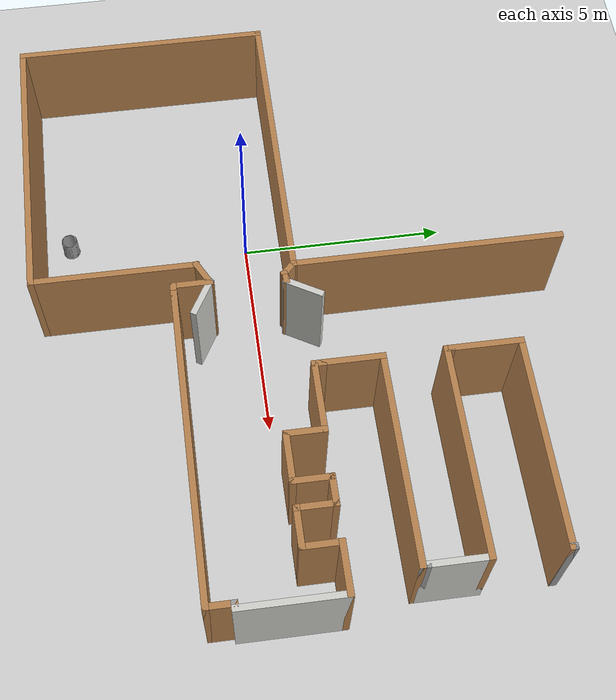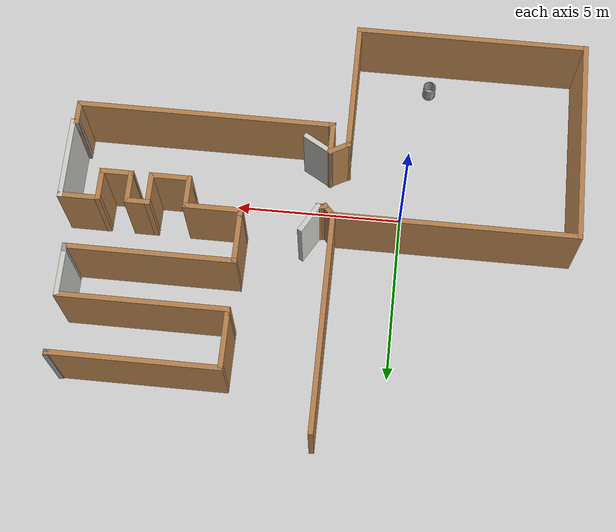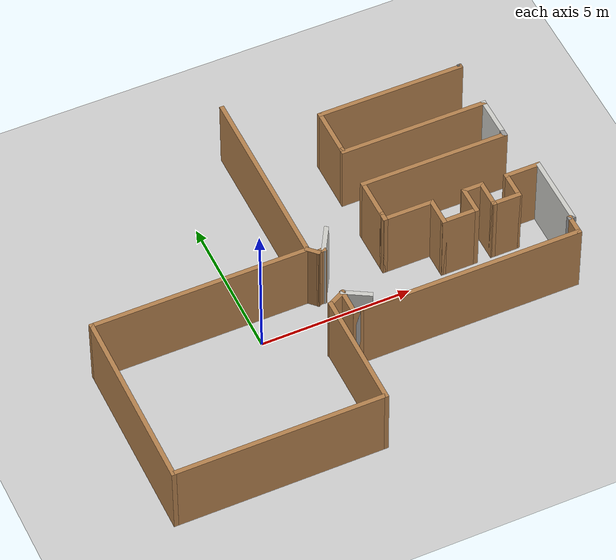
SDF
<sdf version="1.6">
 <world name="default">
  <model name="ground_plane">
   <static>1</static>
   <link name="link">
    <collision name="collision">
     <geometry><plane><normal>0 0 1</normal><size>100 100</size></plane></geometry>
     <surface>
      <contact><collide_bitmask>65535</collide_bitmask></contact>
      <friction><ode><mu>100</mu><mu2>50</mu2></ode></friction>
     </surface>
    </collision>
    <visual name="visual">
     <cast_shadows>0</cast_shadows>
     <geometry><plane><normal>0 0 1</normal><size>100 100</size></plane></geometry>
     <material>
      <script><uri>file://media/materials/scripts/gazebo.material</uri><name>Gazebo/Grey</name></script>
     </material>
    </visual>
   </link>
  </model>
  <model name="ecst_lab_v2">
   <pose>2.38151 7.60499 -4e-06 -3e-06 3e-06 -1.57079</pose>
   <link name="Wall_27">
    <collision name="Wall_27_Collision">
     <geometry><box><size>0.16 0.15 2.5</size></box></geometry>
     <pose>0 0 1.25 0 -0 0</pose>
    </collision>
    <visual name="Wall_27_Visual">
     <pose>0 0 1.25 0 -0 0</pose>
     <geometry><box><size>0.16 0.15 2.5</size></box></geometry>
     <material>
      <script><uri>file://media/materials/scripts/gazebo.material</uri><name>Gazebo/Grey</name></script>
      <ambient>1 1 1 1</ambient>
     </material>
     <meta><layer>0</layer></meta>
    </visual>
    <pose>1.81199 7.10227 0 0 -0 0</pose>
    <inertial>
     <inertia><ixx>1</ixx><ixy>0</ixy><ixz>0</ixz><iyy>1</iyy><iyz>0</iyz><izz>1</izz></inertia>
     <mass>1</mass>
    </inertial>
   </link>
   <link name="Wall_28">
    <collision name="Wall_28_Collision">
     <geometry><box><size>0.16 0.15 2.5</size></box></geometry>
     <pose>0 0 1.25 0 -0 0</pose>
    </collision>
    <visual name="Wall_28_Visual">
     <pose>0 0 1.25 0 -0 0</pose>
     <geometry><box><size>0.16 0.15 2.5</size></box></geometry>
     <material>
      <script><uri>file://media/materials/scripts/gazebo.material</uri><name>Gazebo/Grey</name></script>
      <ambient>1 1 1 1</ambient>
     </material>
     <meta><layer>0</layer></meta>
    </visual>
    <pose>1.82199 7.10227 0 0 -0 0</pose>
    <inertial>
     <inertia><ixx>1</ixx><ixy>0</ixy><ixz>0</ixz><iyy>1</iyy><iyz>0</iyz><izz>1</izz></inertia>
     <mass>1</mass>
    </inertial>
   </link>
   <link name="Wall_29">
    <collision name="Wall_29_Collision">
     <geometry><box><size>0.16 0.15 2.5</size></box></geometry>
     <pose>0 0 1.25 0 -0 0</pose>
    </collision>
    <visual name="Wall_29_Visual">
     <pose>0 0 1.25 0 -0 0</pose>
     <geometry><box><size>0.16 0.15 2.5</size></box></geometry>
     <material>
      <script><uri>file://media/materials/scripts/gazebo.material</uri><name>Gazebo/Grey</name></script>
      <ambient>1 1 1 1</ambient>
     </material>
     <meta><layer>0</layer></meta>
    </visual>
    <pose>1.82199 7.10227 0 0 -0 3.14159</pose>
    <inertial>
     <inertia><ixx>1</ixx><ixy>0</ixy><ixz>0</ixz><iyy>1</iyy><iyz>0</iyz><izz>1</izz></inertia>
     <mass>1</mass>
    </inertial>
   </link>
   <link name="Wall_30">
    <collision name="Wall_30_Collision">
     <geometry><box><size>0.16 0.15 2.5</size></box></geometry>
     <pose>0 0 1.25 0 -0 0</pose>
    </collision>
    <visual name="Wall_30_Visual">
     <pose>0 0 1.25 0 -0 0</pose>
     <geometry><box><size>0.16 0.15 2.5</size></box></geometry>
     <material>
      <script><uri>file://media/materials/scripts/gazebo.material</uri><name>Gazebo/Grey</name></script>
      <ambient>1 1 1 1</ambient>
     </material>
     <meta><layer>0</layer></meta>
    </visual>
    <pose>1.82199 7.10227 0 0 -0 0</pose>
    <inertial>
     <inertia><ixx>1</ixx><ixy>0</ixy><ixz>0</ixz><iyy>1</iyy><iyz>0</iyz><izz>1</izz></inertia>
     <mass>1</mass>
    </inertial>
   </link>
   <link name="Wall_31">
    <collision name="Wall_31_Collision">
     <geometry><box><size>0.16 0.15 2.5</size></box></geometry>
     <pose>0 0 1.25 0 -0 0</pose>
    </collision>
    <visual name="Wall_31_Visual">
     <pose>0 0 1.25 0 -0 0</pose>
     <geometry><box><size>0.16 0.15 2.5</size></box></geometry>
     <material>
      <script><uri>file://media/materials/scripts/gazebo.material</uri><name>Gazebo/Grey</name></script>
      <ambient>1 1 1 1</ambient>
     </material>
     <meta><layer>0</layer></meta>
    </visual>
    <pose>1.83199 7.10227 0 0 -0 0</pose>
    <inertial>
     <inertia><ixx>1</ixx><ixy>0</ixy><ixz>0</ixz><iyy>1</iyy><iyz>0</iyz><izz>1</izz></inertia>
     <mass>1</mass>
    </inertial>
   </link>
   <link name="Wall_32">
    <collision name="Wall_32_Collision">
     <geometry><box><size>0.16 0.15 2.5</size></box></geometry>
     <pose>0 0 1.25 0 -0 0</pose>
    </collision>
    <visual name="Wall_32_Visual">
     <pose>0 0 1.25 0 -0 0</pose>
     <geometry><box><size>0.16 0.15 2.5</size></box></geometry>
     <material>
      <script><uri>file://media/materials/scripts/gazebo.material</uri><name>Gazebo/Grey</name></script>
      <ambient>1 1 1 1</ambient>
     </material>
     <meta><layer>0</layer></meta>
    </visual>
    <pose>1.83199 7.10227 0 0 -0 3.14159</pose>
    <inertial>
     <inertia><ixx>1</ixx><ixy>0</ixy><ixz>0</ixz><iyy>1</iyy><iyz>0</iyz><izz>1</izz></inertia>
     <mass>1</mass>
    </inertial>
   </link>
   <link name="Wall_33">
    <collision name="Wall_33_Collision">
     <geometry><box><size>0.16 0.15 2.5</size></box></geometry>
     <pose>0 0 1.25 0 -0 0</pose>
    </collision>
    <visual name="Wall_33_Visual">
     <pose>0 0 1.25 0 -0 0</pose>
     <geometry><box><size>0.16 0.15 2.5</size></box></geometry>
     <material>
      <script><uri>file://media/materials/scripts/gazebo.material</uri><name>Gazebo/Grey</name></script>
      <ambient>1 1 1 1</ambient>
     </material>
     <meta><layer>0</layer></meta>
    </visual>
    <pose>1.83199 7.10227 0 0 -0 0</pose>
    <inertial>
     <inertia><ixx>1</ixx><ixy>0</ixy><ixz>0</ixz><iyy>1</iyy><iyz>0</iyz><izz>1</izz></inertia>
     <mass>1</mass>
    </inertial>
   </link>
   <link name="Wall_34">
    <collision name="Wall_34_Collision">
     <geometry><box><size>5 0.15 2.5</size></box></geometry>
     <pose>0 0 1.25 0 -0 0</pose>
    </collision>
    <visual name="Wall_34_Visual">
     <pose>0 0 1.25 0 -0 0</pose>
     <geometry><box><size>5 0.15 2.5</size></box></geometry>
     <material>
      <script><uri>file://media/materials/scripts/gazebo.material</uri><name>Gazebo/Wood</name></script>
      <ambient>1 1 1 1</ambient>
     </material>
     <meta><layer>0</layer></meta>
    </visual>
    <pose>1.83699 4.67727 0 0 -0 -1.5708</pose>
    <inertial>
     <inertia><ixx>1</ixx><ixy>0</ixy><ixz>0</ixz><iyy>1</iyy><iyz>0</iyz><izz>1</izz></inertia>
     <mass>1</mass>
    </inertial>
   </link>
   <link name="Wall_35">
    <collision name="Wall_35_Collision">
     <geometry><box><size>1.75 0.15 2.5</size></box></geometry>
     <pose>0 0 1.25 0 -0 0</pose>
    </collision>
    <visual name="Wall_35_Visual">
     <pose>0 0 1.25 0 -0 0</pose>
     <geometry><box><size>1.75 0.15 2.5</size></box></geometry>
     <material>
      <script><uri>file://media/materials/scripts/gazebo.material</uri><name>Gazebo/Wood</name></script>
      <ambient>1 1 1 1</ambient>
     </material>
     <meta><layer>0</layer></meta>
    </visual>
    <pose>2.63699 2.25228 0 0 -0 0</pose>
    <inertial>
     <inertia><ixx>1</ixx><ixy>0</ixy><ixz>0</ixz><iyy>1</iyy><iyz>0</iyz><izz>1</izz></inertia>
     <mass>1</mass>
    </inertial>
   </link>
   <link name="Wall_36">
    <collision name="Wall_36_Collision">
     <geometry><box><size>0.25 0.15 2.5</size></box></geometry>
     <pose>0 0 1.25 0 -0 0</pose>
    </collision>
    <visual name="Wall_36_Visual">
     <pose>0 0 1.25 0 -0 0</pose>
     <geometry><box><size>0.25 0.15 2.5</size></box></geometry>
     <material>
      <script><uri>file://media/materials/scripts/gazebo.material</uri><name>Gazebo/Wood</name></script>
      <ambient>1 1 1 1</ambient>
     </material>
     <meta><layer>0</layer></meta>
    </visual>
    <pose>3.48699 2.25228 0 0 -0 0</pose>
    <inertial>
     <inertia><ixx>1</ixx><ixy>0</ixy><ixz>0</ixz><iyy>1</iyy><iyz>0</iyz><izz>1</izz></inertia>
     <mass>1</mass>
    </inertial>
   </link>
   <link name="Wall_37">
    <collision name="Wall_37_Collision">
     <geometry><box><size>5 0.15 2.5</size></box></geometry>
     <pose>0 0 1.25 0 -0 0</pose>
    </collision>
    <visual name="Wall_37_Visual">
     <pose>0 0 1.25 0 -0 0</pose>
     <geometry><box><size>5 0.15 2.5</size></box></geometry>
     <material>
      <script><uri>file://media/materials/scripts/gazebo.material</uri><name>Gazebo/Wood</name></script>
      <ambient>1 1 1 1</ambient>
     </material>
     <meta><layer>0</layer></meta>
    </visual>
    <pose>3.53699 4.67727 0 0 -0 1.5708</pose>
    <inertial>
     <inertia><ixx>1</ixx><ixy>0</ixy><ixz>0</ixz><iyy>1</iyy><iyz>0</iyz><izz>1</izz></inertia>
     <mass>1</mass>
    </inertial>
   </link>
   <link name="Wall_38">
    <collision name="Wall_38_Collision">
     <geometry><box><size>1.5 0.15 2.5</size></box></geometry>
     <pose>0 0 1.25 0 -0 0</pose>
    </collision>
    <visual name="Wall_38_Visual">
     <pose>0 0 1.25 0 -0 0</pose>
     <geometry><box><size>1.5 0.15 2.5</size></box></geometry>
     <material>
      <script><uri>file://media/materials/scripts/gazebo.material</uri><name>Gazebo/CeilingTiled</name></script>
      <ambient>1 1 1 1</ambient>
     </material>
     <meta><layer>0</layer></meta>
    </visual>
    <pose>4.21199 7.10227 0 0 -0 0</pose>
    <inertial>
     <inertia><ixx>1</ixx><ixy>0</ixy><ixz>0</ixz><iyy>1</iyy><iyz>0</iyz><izz>1</izz></inertia>
     <mass>1</mass>
    </inertial>
   </link>
   <link name="Wall_39">
    <collision name="Wall_39_Collision">
     <geometry><box><size>0.25 0.15 2.5</size></box></geometry>
     <pose>0 0 1.25 0 -0 0</pose>
    </collision>
    <visual name="Wall_39_Visual">
     <pose>0 0 1.25 0 -0 0</pose>
     <geometry><box><size>0.25 0.15 2.5</size></box></geometry>
     <material>
      <script><uri>file://media/materials/scripts/gazebo.material</uri><name>Gazebo/Grey</name></script>
      <ambient>1 1 1 1</ambient>
     </material>
     <meta><layer>0</layer></meta>
    </visual>
    <pose>4.93699 7.10227 0 0 -0 0</pose>
    <inertial>
     <inertia><ixx>1</ixx><ixy>0</ixy><ixz>0</ixz><iyy>1</iyy><iyz>0</iyz><izz>1</izz></inertia>
     <mass>1</mass>
    </inertial>
   </link>
   <link name="Wall_40">
    <collision name="Wall_40_Collision">
     <geometry><box><size>5 0.15 2.5</size></box></geometry>
     <pose>0 0 1.25 0 -0 0</pose>
    </collision>
    <visual name="Wall_40_Visual">
     <pose>0 0 1.25 0 -0 0</pose>
     <geometry><box><size>5 0.15 2.5</size></box></geometry>
     <material>
      <script><uri>file://media/materials/scripts/gazebo.material</uri><name>Gazebo/Wood</name></script>
      <ambient>1 1 1 1</ambient>
     </material>
     <meta><layer>0</layer></meta>
    </visual>
    <pose>4.98699 4.67727 0 0 -0 -1.5708</pose>
    <inertial>
     <inertia><ixx>1</ixx><ixy>0</ixy><ixz>0</ixz><iyy>1</iyy><iyz>0</iyz><izz>1</izz></inertia>
     <mass>1</mass>
    </inertial>
   </link>
   <link name="Wall_41">
    <collision name="Wall_41_Collision">
     <geometry><box><size>1.5 0.15 2.5</size></box></geometry>
     <pose>0 0 1.25 0 -0 0</pose>
    </collision>
    <visual name="Wall_41_Visual">
     <pose>0 0 1.25 0 -0 0</pose>
     <geometry><box><size>1.5 0.15 2.5</size></box></geometry>
     <material>
      <script><uri>file://media/materials/scripts/gazebo.material</uri><name>Gazebo/Wood</name></script>
      <ambient>1 1 1 1</ambient>
     </material>
     <meta><layer>0</layer></meta>
    </visual>
    <pose>5.66199 2.25228 0 0 -0 0</pose>
    <inertial>
     <inertia><ixx>1</ixx><ixy>0</ixy><ixz>0</ixz><iyy>1</iyy><iyz>0</iyz><izz>1</izz></inertia>
     <mass>1</mass>
    </inertial>
   </link>
   <link name="Wall_42">
    <collision name="Wall_42_Collision">
     <geometry><box><size>0.25 0.15 2.5</size></box></geometry>
     <pose>0 0 1.25 0 -0 0</pose>
    </collision>
    <visual name="Wall_42_Visual">
     <pose>0 0 1.25 0 -0 0</pose>
     <geometry><box><size>0.25 0.15 2.5</size></box></geometry>
     <material>
      <script><uri>file://media/materials/scripts/gazebo.material</uri><name>Gazebo/Wood</name></script>
      <ambient>1 1 1 1</ambient>
     </material>
     <meta><layer>0</layer></meta>
    </visual>
    <pose>6.38699 2.25228 0 0 -0 0</pose>
    <inertial>
     <inertia><ixx>1</ixx><ixy>0</ixy><ixz>0</ixz><iyy>1</iyy><iyz>0</iyz><izz>1</izz></inertia>
     <mass>1</mass>
    </inertial>
   </link>
   <link name="Wall_43">
    <collision name="Wall_43_Collision">
     <geometry><box><size>0.25 0.15 2.5</size></box></geometry>
     <pose>0 0 1.25 0 -0 0</pose>
    </collision>
    <visual name="Wall_43_Visual">
     <pose>0 0 1.25 0 -0 0</pose>
     <geometry><box><size>0.25 0.15 2.5</size></box></geometry>
     <material>
      <script><uri>file://media/materials/scripts/gazebo.material</uri><name>Gazebo/Wood</name></script>
      <ambient>1 1 1 1</ambient>
     </material>
     <meta><layer>0</layer></meta>
    </visual>
    <pose>6.48699 2.25228 0 0 -0 0</pose>
    <inertial>
     <inertia><ixx>1</ixx><ixy>0</ixy><ixz>0</ixz><iyy>1</iyy><iyz>0</iyz><izz>1</izz></inertia>
     <mass>1</mass>
    </inertial>
   </link>
   <link name="Wall_44">
    <collision name="Wall_44_Collision">
     <geometry><box><size>1.75 0.15 2.5</size></box></geometry>
     <pose>0 0 1.25 0 -0 0</pose>
    </collision>
    <visual name="Wall_44_Visual">
     <pose>0 0 1.25 0 -0 0</pose>
     <geometry><box><size>1.75 0.15 2.5</size></box></geometry>
     <material>
      <script><uri>file://media/materials/scripts/gazebo.material</uri><name>Gazebo/Wood</name></script>
      <ambient>1 1 1 1</ambient>
     </material>
     <meta><layer>0</layer></meta>
    </visual>
    <pose>6.53699 3.05227 0 0 -0 1.5708</pose>
    <inertial>
     <inertia><ixx>1</ixx><ixy>0</ixy><ixz>0</ixz><iyy>1</iyy><iyz>0</iyz><izz>1</izz></inertia>
     <mass>1</mass>
    </inertial>
   </link>
   <link name="Wall_45">
    <collision name="Wall_45_Collision">
     <geometry><box><size>1 0.15 2.5</size></box></geometry>
     <pose>0 0 1.25 0 -0 0</pose>
    </collision>
    <visual name="Wall_45_Visual">
     <pose>0 0 1.25 0 -0 0</pose>
     <geometry><box><size>1 0.15 2.5</size></box></geometry>
     <material>
      <script><uri>file://media/materials/scripts/gazebo.material</uri><name>Gazebo/Wood</name></script>
      <ambient>1 1 1 1</ambient>
     </material>
     <meta><layer>0</layer></meta>
    </visual>
    <pose>6.96199 3.85228 0 0 -0 0</pose>
    <inertial>
     <inertia><ixx>1</ixx><ixy>0</ixy><ixz>0</ixz><iyy>1</iyy><iyz>0</iyz><izz>1</izz></inertia>
     <mass>1</mass>
    </inertial>
   </link>
   <link name="Wall_46">
    <collision name="Wall_46_Collision">
     <geometry><box><size>1.25 0.15 2.5</size></box></geometry>
     <pose>0 0 1.25 0 -0 0</pose>
    </collision>
    <visual name="Wall_46_Visual">
     <pose>0 0 1.25 0 -0 0</pose>
     <geometry><box><size>1.25 0.15 2.5</size></box></geometry>
     <material>
      <script><uri>file://media/materials/scripts/gazebo.material</uri><name>Gazebo/Wood</name></script>
      <ambient>1 1 1 1</ambient>
     </material>
     <meta><layer>0</layer></meta>
    </visual>
    <pose>7.38699 4.40228 0 0 -0 1.5708</pose>
    <inertial>
     <inertia><ixx>1</ixx><ixy>0</ixy><ixz>0</ixz><iyy>1</iyy><iyz>0</iyz><izz>1</izz></inertia>
     <mass>1</mass>
    </inertial>
   </link>
   <link name="Wall_47">
    <collision name="Wall_47_Collision">
     <geometry><box><size>1 0.15 2.5</size></box></geometry>
     <pose>0 0 1.25 0 -0 0</pose>
    </collision>
    <visual name="Wall_47_Visual">
     <pose>0 0 1.25 0 -0 0</pose>
     <geometry><box><size>1 0.15 2.5</size></box></geometry>
     <material>
      <script><uri>file://media/materials/scripts/gazebo.material</uri><name>Gazebo/Wood</name></script>
      <ambient>1 1 1 1</ambient>
     </material>
     <meta><layer>0</layer></meta>
    </visual>
    <pose>6.96199 4.95228 0 0 -0 3.14159</pose>
    <inertial>
     <inertia><ixx>1</ixx><ixy>0</ixy><ixz>0</ixz><iyy>1</iyy><iyz>0</iyz><izz>1</izz></inertia>
     <mass>1</mass>
    </inertial>
   </link>
   <link name="Wall_48">
    <collision name="Wall_48_Collision">
     <geometry><box><size>0.75 0.15 2.5</size></box></geometry>
     <pose>0 0 1.25 0 -0 0</pose>
    </collision>
    <visual name="Wall_48_Visual">
     <pose>0 0 1.25 0 -0 0</pose>
     <geometry><box><size>0.75 0.15 2.5</size></box></geometry>
     <material>
      <script><uri>file://media/materials/scripts/gazebo.material</uri><name>Gazebo/Wood</name></script>
      <ambient>1 1 1 1</ambient>
     </material>
     <meta><layer>0</layer></meta>
    </visual>
    <pose>6.53699 5.25228 0 0 -0 1.5708</pose>
    <inertial>
     <inertia><ixx>1</ixx><ixy>0</ixy><ixz>0</ixz><iyy>1</iyy><iyz>0</iyz><izz>1</izz></inertia>
     <mass>1</mass>
    </inertial>
   </link>
   <link name="Wall_49">
    <collision name="Wall_49_Collision">
     <geometry><box><size>1 0.15 2.5</size></box></geometry>
     <pose>0 0 1.25 0 -0 0</pose>
    </collision>
    <visual name="Wall_49_Visual">
     <pose>0 0 1.25 0 -0 0</pose>
     <geometry><box><size>1 0.15 2.5</size></box></geometry>
     <material>
      <script><uri>file://media/materials/scripts/gazebo.material</uri><name>Gazebo/Wood</name></script>
      <ambient>1 1 1 1</ambient>
     </material>
     <meta><layer>0</layer></meta>
    </visual>
    <pose>6.96199 5.55227 0 0 -0 0</pose>
    <inertial>
     <inertia><ixx>1</ixx><ixy>0</ixy><ixz>0</ixz><iyy>1</iyy><iyz>0</iyz><izz>1</izz></inertia>
     <mass>1</mass>
    </inertial>
   </link>
   <link name="Wall_50">
    <collision name="Wall_50_Collision">
     <geometry><box><size>1 0.15 2.5</size></box></geometry>
     <pose>0 0 1.25 0 -0 0</pose>
    </collision>
    <visual name="Wall_50_Visual">
     <pose>0 0 1.25 0 -0 0</pose>
     <geometry><box><size>1 0.15 2.5</size></box></geometry>
     <material>
      <script><uri>file://media/materials/scripts/gazebo.material</uri><name>Gazebo/Wood</name></script>
      <ambient>1 1 1 1</ambient>
     </material>
     <meta><layer>0</layer></meta>
    </visual>
    <pose>7.38699 5.97727 0 0 -0 1.5708</pose>
    <inertial>
     <inertia><ixx>1</ixx><ixy>0</ixy><ixz>0</ixz><iyy>1</iyy><iyz>0</iyz><izz>1</izz></inertia>
     <mass>1</mass>
    </inertial>
   </link>
   <link name="Wall_51">
    <collision name="Wall_51_Collision">
     <geometry><box><size>1 0.15 2.5</size></box></geometry>
     <pose>0 0 1.25 0 -0 0</pose>
    </collision>
    <visual name="Wall_51_Visual">
     <pose>0 0 1.25 0 -0 0</pose>
     <geometry><box><size>1 0.15 2.5</size></box></geometry>
     <material>
      <script><uri>file://media/materials/scripts/gazebo.material</uri><name>Gazebo/Wood</name></script>
      <ambient>1 1 1 1</ambient>
     </material>
     <meta><layer>0</layer></meta>
    </visual>
    <pose>6.96199 6.40228 0 0 -0 3.14159</pose>
    <inertial>
     <inertia><ixx>1</ixx><ixy>0</ixy><ixz>0</ixz><iyy>1</iyy><iyz>0</iyz><izz>1</izz></inertia>
     <mass>1</mass>
    </inertial>
   </link>
   <link name="Wall_52">
    <collision name="Wall_52_Collision">
     <geometry><box><size>1.25 0.15 2.5</size></box></geometry>
     <pose>0 0 1.25 0 -0 0</pose>
    </collision>
    <visual name="Wall_52_Visual">
     <pose>0 0 1.25 0 -0 0</pose>
     <geometry><box><size>1.25 0.15 2.5</size></box></geometry>
     <material>
      <script><uri>file://media/materials/scripts/gazebo.material</uri><name>Gazebo/Wood</name></script>
      <ambient>1 1 1 1</ambient>
     </material>
     <meta><layer>0</layer></meta>
    </visual>
    <pose>6.53699 6.95228 0 0 -0 1.5708</pose>
    <inertial>
     <inertia><ixx>1</ixx><ixy>0</ixy><ixz>0</ixz><iyy>1</iyy><iyz>0</iyz><izz>1</izz></inertia>
     <mass>1</mass>
    </inertial>
   </link>
   <link name="Wall_53">
    <collision name="Wall_53_Collision">
     <geometry><box><size>2.5 0.15 2.5</size></box></geometry>
     <pose>0 0 1.25 0 -0 0</pose>
    </collision>
    <visual name="Wall_53_Visual">
     <pose>0 0 1.25 0 -0 0</pose>
     <geometry><box><size>2.5 0.15 2.5</size></box></geometry>
     <material>
      <script><uri>file://media/materials/scripts/gazebo.material</uri><name>Gazebo/CeilingTiled</name></script>
      <ambient>1 1 1 1</ambient>
     </material>
     <meta><layer>0</layer></meta>
    </visual>
    <pose>7.71199 7.50228 0 0 -0 0</pose>
    <inertial>
     <inertia><ixx>1</ixx><ixy>0</ixy><ixz>0</ixz><iyy>1</iyy><iyz>0</iyz><izz>1</izz></inertia>
     <mass>1</mass>
    </inertial>
   </link>
   <link name="Wall_54">
    <collision name="Wall_54_Collision">
     <geometry><box><size>0.25 0.15 2.5</size></box></geometry>
     <pose>0 0 1.25 0 -0 0</pose>
    </collision>
    <visual name="Wall_54_Visual">
     <pose>0 0 1.25 0 -0 0</pose>
     <geometry><box><size>0.25 0.15 2.5</size></box></geometry>
     <material>
      <script><uri>file://media/materials/scripts/gazebo.material</uri><name>Gazebo/Grey</name></script>
      <ambient>1 1 1 1</ambient>
     </material>
     <meta><layer>0</layer></meta>
    </visual>
    <pose>8.88699 7.45228 0 0 -0 -1.5708</pose>
    <inertial>
     <inertia><ixx>1</ixx><ixy>0</ixy><ixz>0</ixz><iyy>1</iyy><iyz>0</iyz><izz>1</izz></inertia>
     <mass>1</mass>
    </inertial>
   </link>
   <link name="Wall_55">
    <collision name="Wall_55_Collision">
     <geometry><box><size>0.75 0.15 2.5</size></box></geometry>
     <pose>0 0 1.25 0 -0 0</pose>
    </collision>
    <visual name="Wall_55_Visual">
     <pose>0 0 1.25 0 -0 0</pose>
     <geometry><box><size>0.75 0.15 2.5</size></box></geometry>
     <material>
      <script><uri>file://media/materials/scripts/gazebo.material</uri><name>Gazebo/Wood</name></script>
      <ambient>1 1 1 1</ambient>
     </material>
     <meta><layer>0</layer></meta>
    </visual>
    <pose>9.18699 7.40228 0 0 -0 0</pose>
    <inertial>
     <inertia><ixx>1</ixx><ixy>0</ixy><ixz>0</ixz><iyy>1</iyy><iyz>0</iyz><izz>1</izz></inertia>
     <mass>1</mass>
    </inertial>
   </link>
   <link name="Wall_56">
    <collision name="Wall_56_Collision">
     <geometry><box><size>7.5 0.15 2.5</size></box></geometry>
     <pose>0 0 1.25 0 -0 0</pose>
    </collision>
    <visual name="Wall_56_Visual">
     <pose>0 0 1.25 0 -0 0</pose>
     <geometry><box><size>7.5 0.15 2.5</size></box></geometry>
     <material>
      <script><uri>file://media/materials/scripts/gazebo.material</uri><name>Gazebo/Wood</name></script>
      <ambient>1 1 1 1</ambient>
     </material>
     <meta><layer>0</layer></meta>
    </visual>
    <pose>9.48699 3.72728 0 0 -0 -1.5708</pose>
    <inertial>
     <inertia><ixx>1</ixx><ixy>0</ixy><ixz>0</ixz><iyy>1</iyy><iyz>0</iyz><izz>1</izz></inertia>
     <mass>1</mass>
    </inertial>
   </link>
   <link name="Wall_57">
    <collision name="Wall_57_Collision">
     <geometry><box><size>0.25 0.15 2.5</size></box></geometry>
     <pose>0 0 1.25 0 -0 0</pose>
    </collision>
    <visual name="Wall_57_Visual">
     <pose>0 0 1.25 0 -0 0</pose>
     <geometry><box><size>0.25 0.15 2.5</size></box></geometry>
     <material>
      <script><uri>file://media/materials/scripts/gazebo.material</uri><name>Gazebo/Wood</name></script>
      <ambient>1 1 1 1</ambient>
     </material>
     <meta><layer>0</layer></meta>
    </visual>
    <pose>9.48699 0.002275 0 0 -0 -1.5708</pose>
    <inertial>
     <inertia><ixx>1</ixx><ixy>0</ixy><ixz>0</ixz><iyy>1</iyy><iyz>0</iyz><izz>1</izz></inertia>
     <mass>1</mass>
    </inertial>
   </link>
   <link name="Wall_58">
    <collision name="Wall_58_Collision">
     <geometry><box><size>0.15 0.15 2.5</size></box></geometry>
     <pose>0 0 1.25 0 -0 0</pose>
    </collision>
    <visual name="Wall_58_Visual">
     <pose>0 0 1.25 0 -0 0</pose>
     <geometry><box><size>0.15 0.15 2.5</size></box></geometry>
     <material>
      <script><uri>file://media/materials/scripts/gazebo.material</uri><name>Gazebo/Grey</name></script>
      <ambient>1 1 1 1</ambient>
     </material>
     <meta><layer>0</layer></meta>
    </visual>
    <pose>9.48699 -0.047725 0 0 -0 0</pose>
    <inertial>
     <inertia><ixx>1</ixx><ixy>0</ixy><ixz>0</ixz><iyy>1</iyy><iyz>0</iyz><izz>1</izz></inertia>
     <mass>1</mass>
    </inertial>
   </link>
   <link name="Wall_59">
    <collision name="Wall_59_Collision">
     <geometry><box><size>0.25 0.15 2.5</size></box></geometry>
     <pose>0 0 1.25 0 -0 0</pose>
    </collision>
    <visual name="Wall_59_Visual">
     <pose>0 0 1.25 0 -0 0</pose>
     <geometry><box><size>0.25 0.15 2.5</size></box></geometry>
     <material>
      <script><uri>file://media/materials/scripts/gazebo.material</uri><name>Gazebo/Wood</name></script>
      <ambient>1 1 1 1</ambient>
     </material>
     <meta><layer>0</layer></meta>
    </visual>
    <pose>9.48699 -0.097725 0 0 -0 -1.5708</pose>
    <inertial>
     <inertia><ixx>1</ixx><ixy>0</ixy><ixz>0</ixz><iyy>1</iyy><iyz>0</iyz><izz>1</izz></inertia>
     <mass>1</mass>
    </inertial>
   </link>
   <link name="Wall_60">
    <collision name="Wall_60_Collision">
     <geometry><box><size>1 0.15 2.5</size></box></geometry>
     <pose>0 0 1.25 0 -0 0</pose>
    </collision>
    <visual name="Wall_60_Visual">
     <pose>0 0 1.25 0 -0 0</pose>
     <geometry><box><size>1 0.15 2.5</size></box></geometry>
     <material>
      <script><uri>file://media/materials/scripts/gazebo.material</uri><name>Gazebo/Wood</name></script>
      <ambient>1 1 1 1</ambient>
     </material>
     <meta><layer>0</layer></meta>
    </visual>
    <pose>9.06199 -0.147725 0 0 -0 3.14159</pose>
    <inertial>
     <inertia><ixx>1</ixx><ixy>0</ixy><ixz>0</ixz><iyy>1</iyy><iyz>0</iyz><izz>1</izz></inertia>
     <mass>1</mass>
    </inertial>
   </link>
   <link name="Wall_61">
    <collision name="Wall_61_Collision">
     <geometry><box><size>1 0.15 2.5</size></box></geometry>
     <pose>0 0 1.25 0 -0 0</pose>
    </collision>
    <visual name="Wall_61_Visual">
     <pose>0 0 1.25 0 -0 0</pose>
     <geometry><box><size>1 0.15 2.5</size></box></geometry>
     <material>
      <script><uri>file://media/materials/scripts/gazebo.material</uri><name>Gazebo/CeilingTiled</name></script>
      <ambient>1 1 1 1</ambient>
     </material>
     <meta><layer>0</layer></meta>
    </visual>
    <pose>8.84949 0.220335 0 0 -0 1.0472</pose>
    <inertial>
     <inertia><ixx>1</ixx><ixy>0</ixy><ixz>0</ixz><iyy>1</iyy><iyz>0</iyz><izz>1</izz></inertia>
     <mass>1</mass>
    </inertial>
   </link>
   <link name="Wall_63">
    <collision name="Wall_63_Collision">
     <geometry><box><size>1 0.15 2.5</size></box></geometry>
     <pose>0 0 1.25 0 -0 0</pose>
    </collision>
    <visual name="Wall_63_Visual">
     <pose>0 0 1.25 0 -0 0</pose>
     <geometry><box><size>1 0.15 2.5</size></box></geometry>
     <material>
      <script><uri>file://media/materials/scripts/gazebo.material</uri><name>Gazebo/CeilingTiled</name></script>
      <ambient>1 1 1 1</ambient>
     </material>
     <meta><layer>0</layer></meta>
    </visual>
    <pose>6.50697 0.254306 0 0 -0 -0.523599</pose>
    <inertial>
     <inertia><ixx>1</ixx><ixy>0</ixy><ixz>0</ixz><iyy>1</iyy><iyz>0</iyz><izz>1</izz></inertia>
     <mass>1</mass>
    </inertial>
   </link>
   <link name="Wall_64">
    <collision name="Wall_64_Collision">
     <geometry><box><size>0.25 0.15 2.5</size></box></geometry>
     <pose>0 0 1.25 0 -0 0</pose>
    </collision>
    <visual name="Wall_64_Visual">
     <pose>0 0 1.25 0 -0 0</pose>
     <geometry><box><size>0.25 0.15 2.5</size></box></geometry>
     <material>
      <script><uri>file://media/materials/scripts/gazebo.material</uri><name>Gazebo/Wood</name></script>
      <ambient>1 1 1 1</ambient>
     </material>
     <meta><layer>0</layer></meta>
    </visual>
    <pose>6.87503 -0.008194 0 0 -0 -1.5708</pose>
    <inertial>
     <inertia><ixx>1</ixx><ixy>0</ixy><ixz>0</ixz><iyy>1</iyy><iyz>0</iyz><izz>1</izz></inertia>
     <mass>1</mass>
    </inertial>
   </link>
   <link name="Wall_65">
    <collision name="Wall_65_Collision">
     <geometry><box><size>0.25 0.15 2.5</size></box></geometry>
     <pose>0 0 1.25 0 -0 0</pose>
    </collision>
    <visual name="Wall_65_Visual">
     <pose>0 0 1.25 0 -0 0</pose>
     <geometry><box><size>0.25 0.15 2.5</size></box></geometry>
     <material>
      <script><uri>file://media/materials/scripts/gazebo.material</uri><name>Gazebo/Wood</name></script>
      <ambient>1 1 1 1</ambient>
     </material>
     <meta><layer>0</layer></meta>
    </visual>
    <pose>6.88797 -0.106491 0 0 -0 -1.309</pose>
    <inertial>
     <inertia><ixx>1</ixx><ixy>0</ixy><ixz>0</ixz><iyy>1</iyy><iyz>0</iyz><izz>1</izz></inertia>
     <mass>1</mass>
    </inertial>
   </link>
   <link name="Wall_66">
    <collision name="Wall_66_Collision">
     <geometry><box><size>0.5 0.15 2.5</size></box></geometry>
     <pose>0 0 1.25 0 -0 0</pose>
    </collision>
    <visual name="Wall_66_Visual">
     <pose>0 0 1.25 0 -0 0</pose>
     <geometry><box><size>0.5 0.15 2.5</size></box></geometry>
     <material>
      <script><uri>file://media/materials/scripts/gazebo.material</uri><name>Gazebo/Wood</name></script>
      <ambient>1 1 1 1</ambient>
     </material>
     <meta><layer>0</layer></meta>
    </visual>
    <pose>6.77717 -0.278531 0 0 -0 -2.35619</pose>
    <inertial>
     <inertia><ixx>1</ixx><ixy>0</ixy><ixz>0</ixz><iyy>1</iyy><iyz>0</iyz><izz>1</izz></inertia>
     <mass>1</mass>
    </inertial>
   </link>
   <link name="Wall_67">
    <collision name="Wall_67_Collision">
     <geometry><box><size>7.25 0.15 2.5</size></box></geometry>
     <pose>0 0 1.25 0 -0 0</pose>
    </collision>
    <visual name="Wall_67_Visual">
     <pose>0 0 1.25 0 -0 0</pose>
     <geometry><box><size>7.25 0.15 2.5</size></box></geometry>
     <material>
      <script><uri>file://media/materials/scripts/gazebo.material</uri><name>Gazebo/Wood</name></script>
      <ambient>1 1 1 1</ambient>
     </material>
     <meta><layer>0</layer></meta>
    </visual>
    <pose>6.65343 -3.95227 0 0 -0 -1.5708</pose>
    <inertial>
     <inertia><ixx>1</ixx><ixy>0</ixy><ixz>0</ixz><iyy>1</iyy><iyz>0</iyz><izz>1</izz></inertia>
     <mass>1</mass>
    </inertial>
   </link>
   <link name="Wall_68">
    <collision name="Wall_68_Collision">
     <geometry><box><size>6.25 0.15 2.5</size></box></geometry>
     <pose>0 0 1.25 0 -0 0</pose>
    </collision>
    <visual name="Wall_68_Visual">
     <pose>0 0 1.25 0 -0 0</pose>
     <geometry><box><size>6.25 0.15 2.5</size></box></geometry>
     <material>
      <script><uri>file://media/materials/scripts/gazebo.material</uri><name>Gazebo/Wood</name></script>
      <ambient>1 1 1 1</ambient>
     </material>
     <meta><layer>0</layer></meta>
    </visual>
    <pose>9.70343 -7.50227 0 0 -0 0</pose>
    <inertial>
     <inertia><ixx>1</ixx><ixy>0</ixy><ixz>0</ixz><iyy>1</iyy><iyz>0</iyz><izz>1</izz></inertia>
     <mass>1</mass>
    </inertial>
   </link>
   <link name="Wall_69">
    <collision name="Wall_69_Collision">
     <geometry><box><size>7 0.15 2.5</size></box></geometry>
     <pose>0 0 1.25 0 -0 0</pose>
    </collision>
    <visual name="Wall_69_Visual">
     <pose>0 0 1.25 0 -0 0</pose>
     <geometry><box><size>7 0.15 2.5</size></box></geometry>
     <material>
      <script><uri>file://media/materials/scripts/gazebo.material</uri><name>Gazebo/Wood</name></script>
      <ambient>1 1 1 1</ambient>
     </material>
     <meta><layer>0</layer></meta>
    </visual>
    <pose>12.7534 -4.07727 0 0 -0 1.5708</pose>
    <inertial>
     <inertia><ixx>1</ixx><ixy>0</ixy><ixz>0</ixz><iyy>1</iyy><iyz>0</iyz><izz>1</izz></inertia>
     <mass>1</mass>
    </inertial>
   </link>
   <link name="Wall_70">
    <collision name="Wall_70_Collision">
     <geometry><box><size>4 0.15 2.5</size></box></geometry>
     <pose>0 0 1.25 0 -0 0</pose>
    </collision>
    <visual name="Wall_70_Visual">
     <pose>0 0 1.25 0 -0 0</pose>
     <geometry><box><size>4 0.15 2.5</size></box></geometry>
     <material>
      <script><uri>file://media/materials/scripts/gazebo.material</uri><name>Gazebo/Wood</name></script>
      <ambient>1 1 1 1</ambient>
     </material>
     <meta><layer>0</layer></meta>
    </visual>
    <pose>10.8284 -0.652274 0 0 -0 3.14159</pose>
    <inertial>
     <inertia><ixx>1</ixx><ixy>0</ixy><ixz>0</ixz><iyy>1</iyy><iyz>0</iyz><izz>1</izz></inertia>
     <mass>1</mass>
    </inertial>
   </link>
   <link name="Wall_71">
    <collision name="Wall_71_Collision">
     <geometry><box><size>0.720579 0.15 2.5</size></box></geometry>
     <pose>0 0 1.25 0 -0 0</pose>
    </collision>
    <visual name="Wall_71_Visual">
     <pose>0 0 1.25 0 -0 0</pose>
     <geometry><box><size>0.720579 0.15 2.5</size></box></geometry>
     <material>
      <script><uri>file://media/materials/scripts/gazebo.material</uri><name>Gazebo/Wood</name></script>
      <ambient>1 1 1 1</ambient>
     </material>
     <meta><layer>0</layer></meta>
    </visual>
    <pose>8.77021 -0.4 0 0 -0 2.05665</pose>
    <inertial>
     <inertia><ixx>1</ixx><ixy>0</ixy><ixz>0</ixz><iyy>1</iyy><iyz>0</iyz><izz>1</izz></inertia>
     <mass>1</mass>
    </inertial>
   </link>
   <link name="Wall_73">
    <collision name="Wall_73_Collision">
     <geometry><box><size>6.5 0.15 2.5</size></box></geometry>
     <pose>0 0 1.25 0 -0 0</pose>
    </collision>
    <visual name="Wall_73_Visual">
     <pose>0 0 1.25 0 -0 0</pose>
     <geometry><box><size>6.5 0.15 2.5</size></box></geometry>
     <material>
      <script><uri>file://media/materials/scripts/gazebo.material</uri><name>Gazebo/Wood</name></script>
      <ambient>1 1 1 1</ambient>
     </material>
     <meta><layer>0</layer></meta>
    </visual>
    <pose>3.47843 -0.402274 0 0 -0 3.14159</pose>
    <inertial>
     <inertia><ixx>1</ixx><ixy>0</ixy><ixz>0</ixz><iyy>1</iyy><iyz>0</iyz><izz>1</izz></inertia>
     <mass>1</mass>
    </inertial>
   </link>
  </model>
  <model name="trash">
   <static>1</static>
   <link name="link_0">
    <inertial>
     <mass>1</mass>
     <inertia>
      <ixx>0.166667</ixx>
      <ixy>0</ixy>
      <ixz>0</ixz>
      <iyy>0.166667</iyy>
      <iyz>0</iyz>
      <izz>0.166667</izz>
     </inertia>
    </inertial>
    <visual name="visual">
     <geometry><mesh><uri>model://trash_can/trash_can.stl</uri><scale>1 1 1</scale></mesh></geometry>
     <material>
      <lighting>1</lighting>
      <script><uri>file://media/materials/scripts/gazebo.material</uri><name>Gazebo/Grey</name></script>
      <shader type="vertex"><normal_map>__default__</normal_map></shader>
     </material>
    </visual>
    <collision name="collision">
     <geometry><mesh><uri>model://trash_can/trash_can.stl</uri><scale>1 1 1</scale></mesh></geometry>
     <surface>
      <friction>
       <ode><mu>1</mu><mu2>1</mu2><fdir1>0 0 0</fdir1><slip1>0</slip1><slip2>0</slip2></ode>
       <torsional>
        <coefficient>1</coefficient>
        <patch_radius>0</patch_radius>
        <surface_radius>0</surface_radius>
        <use_patch_radius>1</use_patch_radius>
        <ode><slip>0</slip></ode>
       </torsional>
      </friction>
      <bounce><restitution_coefficient>0</restitution_coefficient><threshold>1e+06</threshold></bounce>
      <contact>
       <collide_without_contact>0</collide_without_contact>
       <collide_without_contact_bitmask>1</collide_without_contact_bitmask>
       <collide_bitmask>1</collide_bitmask>
       <ode>
        <soft_cfm>0</soft_cfm>
        <soft_erp>0.2</soft_erp>
        <kp>1e+13</kp>
        <kd>1</kd>
        <max_vel>0.01</max_vel>
        <min_depth>0</min_depth>
       </ode>
       <bullet>
        <split_impulse>1</split_impulse>
        <split_impulse_penetration_threshold>-0.01</split_impulse_penetration_threshold>
        <soft_cfm>0</soft_cfm>
        <soft_erp>0.2</soft_erp>
        <kp>1e+13</kp>
        <kd>1</kd>
       </bullet>
      </contact>
     </surface>
    </collision>
   </link>
   <static>0</static>
   <pose>-0.5854 -4.43503 0.262483 -0 -3e-06 0.001115</pose>
  </model>
 </world>
</sdf>
